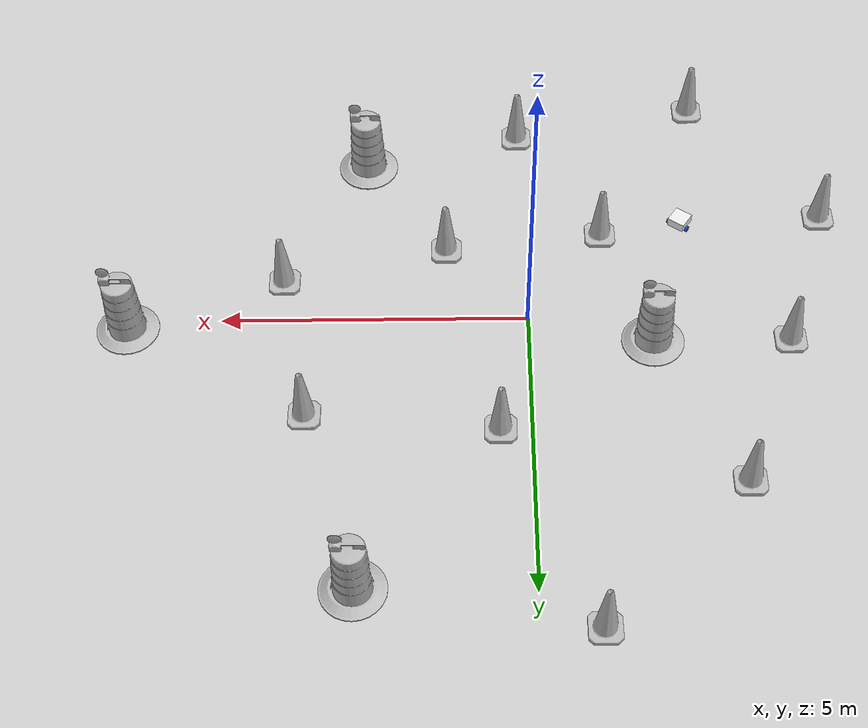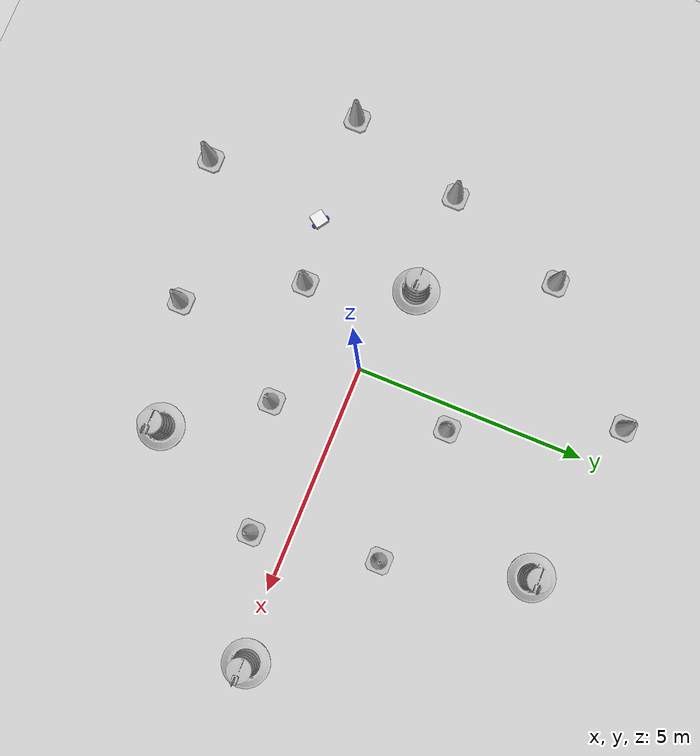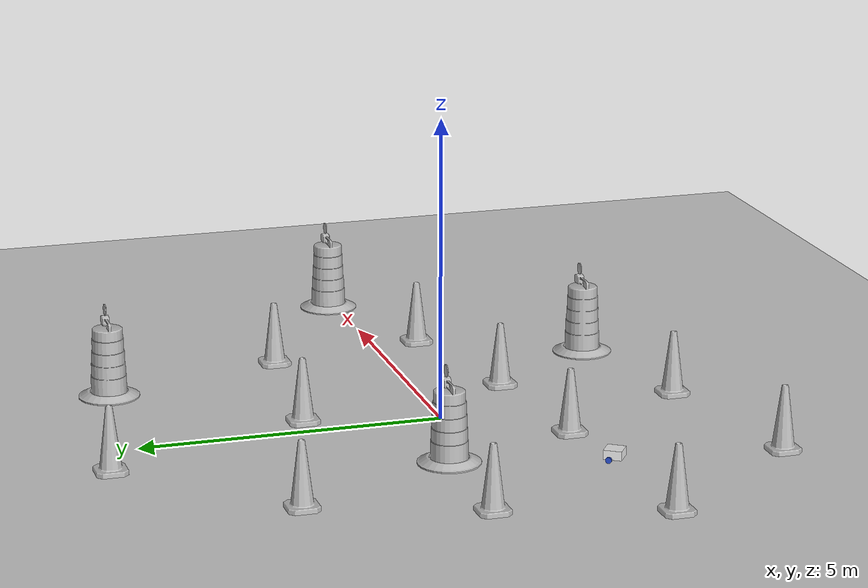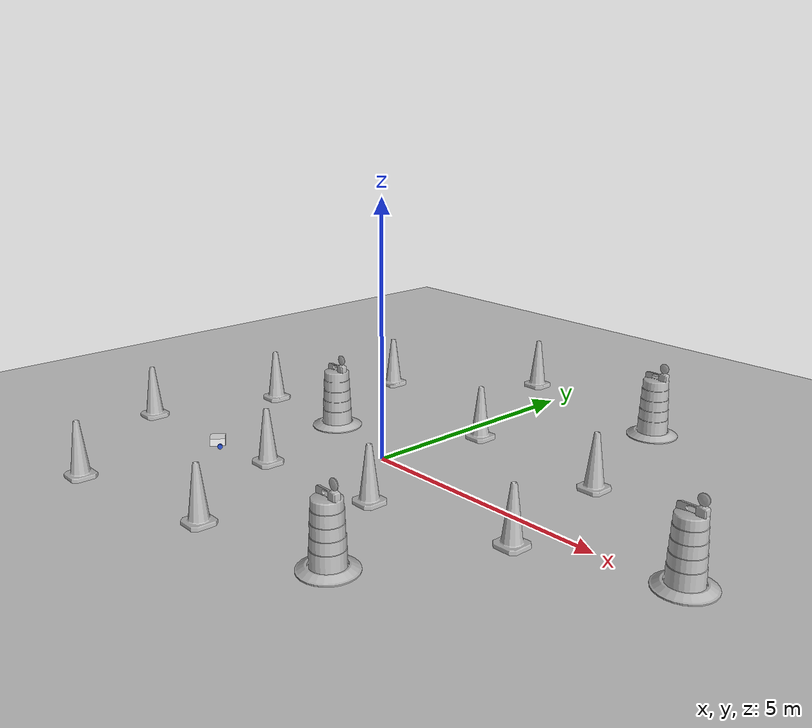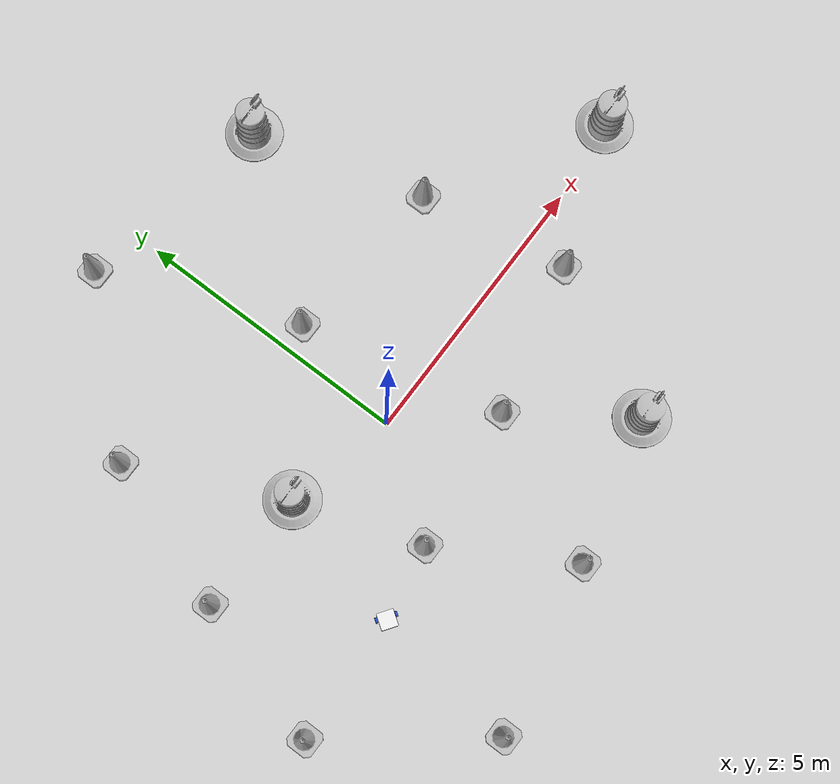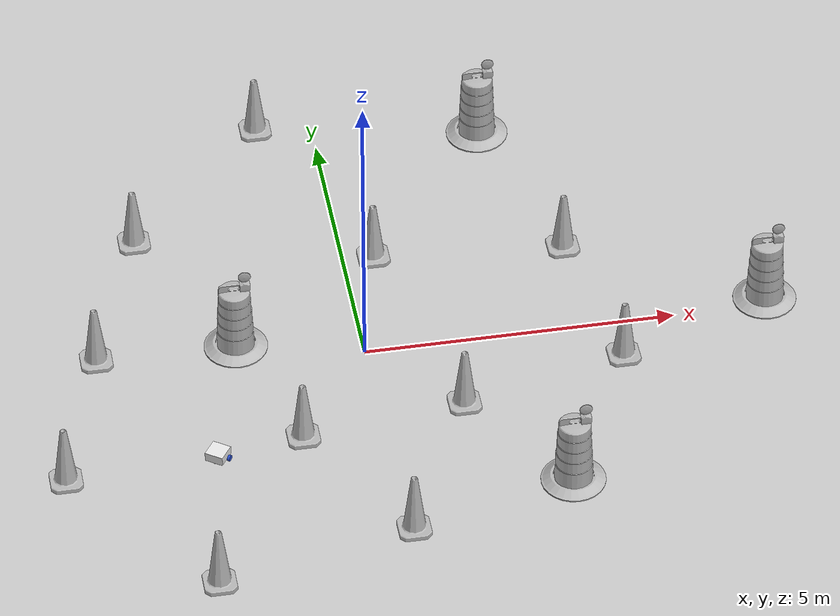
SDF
<sdf version="1.7">
 <world name="default">
  <light name="sun" type="directional">
   <pose>0 0 10 0 -0 0</pose>
   <diffuse>0.8 0.8 0.8 1</diffuse>
   <specular>0.2 0.2 0.2 1</specular>
   <attenuation>
    <range>1000</range>
    <constant>0.9</constant>
    <linear>0.01</linear>
    <quadratic>0.001</quadratic>
   </attenuation>
   <direction>-0.5 0.1 -0.9</direction>
   <spot><inner_angle>0</inner_angle><outer_angle>0</outer_angle><falloff>0</falloff></spot>
  </light>
  <model name="ground_plane">
   <static>1</static>
   <link name="link">
    <collision name="collision">
     <geometry><plane><normal>0 0 1</normal><size>100 100</size></plane></geometry>
     <surface><friction><ode><mu>100</mu><mu2>50</mu2></ode></friction></surface>
    </collision>
    <visual name="visual">
     <cast_shadows>0</cast_shadows>
     <geometry><plane><normal>0 0 1</normal><size>100 100</size></plane></geometry>
     <material>
      <script><uri>file://media/materials/scripts/gazebo.material</uri><name>Gazebo/Grey</name></script>
     </material>
    </visual>
   </link>
  </model>
  <gravity>0 0 -9.8</gravity>
  <magnetic_field>6e-06 2.3e-05 -4.2e-05</magnetic_field>
  <atmosphere type="adiabatic"/>
  <physics type="ode">
   <max_step_size>0.001</max_step_size>
   <real_time_factor>1</real_time_factor>
   <real_time_update_rate>1000</real_time_update_rate>
  </physics>
  <scene><ambient>0.4 0.4 0.4 1</ambient><background>0.7 0.7 0.7 1</background><shadows>1</shadows></scene>
  <audio><device>default</device></audio>
  <spherical_coordinates>
   <surface_model>EARTH_WGS84</surface_model>
   <latitude_deg>0</latitude_deg>
   <longitude_deg>0</longitude_deg>
   <elevation>0</elevation>
   <heading_deg>0</heading_deg>
  </spherical_coordinates>
  <model name="my_bot">
   <link name="base_link">
    <inertial>
     <pose>0.065 0 0.0625 0 -0 0</pose>
     <mass>0.6</mass>
     <inertia>
      <ixx>0.0151562</ixx>
      <ixy>0</ixy>
      <ixz>0.0005625</ixz>
      <iyy>0.0158313</iyy>
      <iyz>0</iyz>
      <izz>0.018175</izz>
     </inertia>
    </inertial>
    <collision name="base_link_fixed_joint_lump__chassis_collision">
     <pose>0.05 0 0.075 0 -0 0</pose>
     <geometry><box><size>0.3 0.3 0.15</size></box></geometry>
    </collision>
    <collision name="base_link_fixed_joint_lump__caster_wheel_collision_1">
     <pose>0.14 0 0 0 -0 0</pose>
     <geometry><sphere><radius>0.05</radius></sphere></geometry>
     <surface><friction><ode><mu>0.001</mu><mu2>0.001</mu2></ode></friction></surface>
    </collision>
    <visual name="base_link_fixed_joint_lump__chassis_visual">
     <pose>0.05 0 0.075 0 -0 0</pose>
     <geometry><box><size>0.3 0.3 0.15</size></box></geometry>
     <material>
      <script><name>Gazebo/White</name><uri>file://media/materials/scripts/gazebo.material</uri></script>
     </material>
    </visual>
    <visual name="base_link_fixed_joint_lump__caster_wheel_visual_1">
     <pose>0.14 0 0 0 -0 0</pose>
     <geometry><sphere><radius>0.05</radius></sphere></geometry>
     <material>
      <script><name>Gazebo/Black</name><uri>file://media/materials/scripts/gazebo.material</uri></script>
     </material>
    </visual>
   </link>
   <joint name="left_wheel_joint" type="revolute">
    <pose relative_to="base_link">0 0.175 0 -1.5708 0 0</pose>
    <parent>base_link</parent>
    <child>left_wheel</child>
    <axis>
     <xyz>0 0 1</xyz>
     <limit><lower>-1e+16</lower><upper>1e+16</upper></limit>
     <dynamics><spring_reference>0</spring_reference><spring_stiffness>0</spring_stiffness></dynamics>
    </axis>
   </joint>
   <link name="left_wheel">
    <pose relative_to="left_wheel_joint">0 0 0 0 -0 0</pose>
    <inertial>
     <mass>0.1</mass>
     <inertia>
      <ixx>7.58333e-05</ixx>
      <ixy>0</ixy>
      <ixz>0</ixz>
      <iyy>7.58333e-05</iyy>
      <iyz>0</iyz>
      <izz>0.000125</izz>
     </inertia>
    </inertial>
    <collision name="left_wheel_collision">
     <geometry><cylinder><length>0.04</length><radius>0.05</radius></cylinder></geometry>
    </collision>
    <visual name="left_wheel_visual">
     <geometry><cylinder><length>0.04</length><radius>0.05</radius></cylinder></geometry>
     <material>
      <script><name>Gazebo/Blue</name><uri>file://media/materials/scripts/gazebo.material</uri></script>
     </material>
    </visual>
   </link>
   <joint name="right_wheel_joint" type="revolute">
    <pose relative_to="base_link">0 -0.175 0 1.5708 -0 0</pose>
    <parent>base_link</parent>
    <child>right_wheel</child>
    <axis>
     <xyz>0 0 -1</xyz>
     <limit><lower>-1e+16</lower><upper>1e+16</upper></limit>
     <dynamics><spring_reference>0</spring_reference><spring_stiffness>0</spring_stiffness></dynamics>
    </axis>
   </joint>
   <link name="right_wheel">
    <pose relative_to="right_wheel_joint">0 0 0 0 -0 0</pose>
    <inertial>
     <mass>0.1</mass>
     <inertia>
      <ixx>7.58333e-05</ixx>
      <ixy>0</ixy>
      <ixz>0</ixz>
      <iyy>7.58333e-05</iyy>
      <iyz>0</iyz>
      <izz>0.000125</izz>
     </inertia>
    </inertial>
    <collision name="right_wheel_collision">
     <geometry><cylinder><length>0.04</length><radius>0.05</radius></cylinder></geometry>
    </collision>
    <visual name="right_wheel_visual">
     <geometry><cylinder><length>0.04</length><radius>0.05</radius></cylinder></geometry>
     <material>
      <script><name>Gazebo/Blue</name><uri>file://media/materials/scripts/gazebo.material</uri></script>
     </material>
    </visual>
   </link>
   <plugin name="joint_state_publisher" filename="libgazebo_ros_joint_state_publisher.so">
    <jointName>left_wheel,right_wheel</jointName>
   </plugin>
   <static>0</static>
   <plugin name="diff_drive" filename="libgazebo_ros_diff_drive.so">
    <left_joint>left_wheel_joint</left_joint>
    <right_joint>right_wheel_joint</right_joint>
    <wheel_separation>0.35</wheel_separation>
    <wheel_diameter>0.1</wheel_diameter>
    <max_wheel_torque>200</max_wheel_torque>
    <max_wheel_acceleration>10.0</max_wheel_acceleration>
    <odometry_frame>odom</odometry_frame>
    <robot_base_frame>base_link</robot_base_frame>
    <publish_odom>1</publish_odom>
    <publish_odom_tf>1</publish_odom_tf>
    <publish_wheel_tf>1</publish_wheel_tf>
   </plugin>
   <pose>-2.61545 -1.97792 0.05 0 9e-06 -2.16885</pose>
  </model>
  <model name="Construction Cone">
   <link name="link">
    <collision name="collision">
     <geometry>
      <mesh><scale>10 10 10</scale><uri>model://construction_cone/meshes/construction_cone.dae</uri></mesh>
     </geometry>
    </collision>
    <visual name="visual">
     <geometry>
      <mesh><scale>10 10 10</scale><uri>model://construction_cone/meshes/construction_cone.dae</uri></mesh>
     </geometry>
    </visual>
    <inertial>
     <inertia><ixx>1</ixx><ixy>0</ixy><ixz>0</ixz><iyy>1</iyy><iyz>0</iyz><izz>1</izz></inertia>
     <mass>1</mass>
    </inertial>
   </link>
   <pose>-1.26532 -1.76948 -0 0 -1e-06 0</pose>
  </model>
  <model name="Construction Cone_0">
   <link name="link">
    <collision name="collision">
     <geometry>
      <mesh><scale>10 10 10</scale><uri>model://construction_cone/meshes/construction_cone.dae</uri></mesh>
     </geometry>
    </collision>
    <visual name="visual">
     <geometry>
      <mesh><scale>10 10 10</scale><uri>model://construction_cone/meshes/construction_cone.dae</uri></mesh>
     </geometry>
    </visual>
    <inertial>
     <inertia><ixx>1</ixx><ixy>0</ixy><ixz>0</ixz><iyy>1</iyy><iyz>0</iyz><izz>1</izz></inertia>
     <mass>1</mass>
    </inertial>
   </link>
   <pose>-4.22726 0.492681 -0 0 -0 0</pose>
  </model>
  <model name="Construction Cone_1">
   <link name="link">
    <collision name="collision">
     <geometry>
      <mesh><scale>10 10 10</scale><uri>model://construction_cone/meshes/construction_cone.dae</uri></mesh>
     </geometry>
    </collision>
    <visual name="visual">
     <geometry>
      <mesh><scale>10 10 10</scale><uri>model://construction_cone/meshes/construction_cone.dae</uri></mesh>
     </geometry>
    </visual>
    <inertial>
     <inertia><ixx>1</ixx><ixy>0</ixy><ixz>0</ixz><iyy>1</iyy><iyz>0</iyz><izz>1</izz></inertia>
     <mass>1</mass>
    </inertial>
   </link>
   <pose>0.493371 2.18601 -0 -0 -0 -0</pose>
  </model>
  <model name="Construction Cone_2">
   <link name="link">
    <collision name="collision">
     <geometry>
      <mesh><scale>10 10 10</scale><uri>model://construction_cone/meshes/construction_cone.dae</uri></mesh>
     </geometry>
    </collision>
    <visual name="visual">
     <geometry>
      <mesh><scale>10 10 10</scale><uri>model://construction_cone/meshes/construction_cone.dae</uri></mesh>
     </geometry>
    </visual>
    <inertial>
     <inertia><ixx>1</ixx><ixy>0</ixy><ixz>0</ixz><iyy>1</iyy><iyz>0</iyz><izz>1</izz></inertia>
     <mass>1</mass>
    </inertial>
   </link>
   <pose>1.34015 -1.45 -0 0 -1e-06 0</pose>
  </model>
  <model name="Construction Cone_3">
   <link name="link">
    <collision name="collision">
     <geometry>
      <mesh><scale>10 10 10</scale><uri>model://construction_cone/meshes/construction_cone.dae</uri></mesh>
     </geometry>
    </collision>
    <visual name="visual">
     <geometry>
      <mesh><scale>10 10 10</scale><uri>model://construction_cone/meshes/construction_cone.dae</uri></mesh>
     </geometry>
    </visual>
    <inertial>
     <inertia><ixx>1</ixx><ixy>0</ixy><ixz>0</ixz><iyy>1</iyy><iyz>0</iyz><izz>1</izz></inertia>
     <mass>1</mass>
    </inertial>
   </link>
   <pose>-5.02729 -2.12098 -8e-06 -6e-06 0 0</pose>
  </model>
  <model name="Construction Cone_4">
   <link name="link">
    <collision name="collision">
     <geometry>
      <mesh><scale>10 10 10</scale><uri>model://construction_cone/meshes/construction_cone.dae</uri></mesh>
     </geometry>
    </collision>
    <visual name="visual">
     <geometry>
      <mesh><scale>10 10 10</scale><uri>model://construction_cone/meshes/construction_cone.dae</uri></mesh>
     </geometry>
    </visual>
    <inertial>
     <inertia><ixx>1</ixx><ixy>0</ixy><ixz>0</ixz><iyy>1</iyy><iyz>0</iyz><izz>1</izz></inertia>
     <mass>1</mass>
    </inertial>
   </link>
   <pose>0.095273 -4.06232 -1e-05 -1e-06 0 0</pose>
  </model>
  <model name="Construction Cone_5">
   <link name="link">
    <collision name="collision">
     <geometry>
      <mesh><scale>10 10 10</scale><uri>model://construction_cone/meshes/construction_cone.dae</uri></mesh>
     </geometry>
    </collision>
    <visual name="visual">
     <geometry>
      <mesh><scale>10 10 10</scale><uri>model://construction_cone/meshes/construction_cone.dae</uri></mesh>
     </geometry>
    </visual>
    <inertial>
     <inertia><ixx>1</ixx><ixy>0</ixy><ixz>0</ixz><iyy>1</iyy><iyz>0</iyz><izz>1</izz></inertia>
     <mass>1</mass>
    </inertial>
   </link>
   <pose>-3.00344 -4.70686 -5e-06 -4e-06 1e-06 0</pose>
  </model>
  <model name="Construction Cone_6">
   <link name="link">
    <collision name="collision">
     <geometry>
      <mesh><scale>10 10 10</scale><uri>model://construction_cone/meshes/construction_cone.dae</uri></mesh>
     </geometry>
    </collision>
    <visual name="visual">
     <geometry>
      <mesh><scale>10 10 10</scale><uri>model://construction_cone/meshes/construction_cone.dae</uri></mesh>
     </geometry>
    </visual>
    <inertial>
     <inertia><ixx>1</ixx><ixy>0</ixy><ixz>0</ixz><iyy>1</iyy><iyz>0</iyz><izz>1</izz></inertia>
     <mass>1</mass>
    </inertial>
   </link>
   <pose>3.55346 1.9009 -0 0 -0 0</pose>
  </model>
  <model name="Construction Cone_7">
   <link name="link">
    <collision name="collision">
     <geometry>
      <mesh><scale>10 10 10</scale><uri>model://construction_cone/meshes/construction_cone.dae</uri></mesh>
     </geometry>
    </collision>
    <visual name="visual">
     <geometry>
      <mesh><scale>10 10 10</scale><uri>model://construction_cone/meshes/construction_cone.dae</uri></mesh>
     </geometry>
    </visual>
    <inertial>
     <inertia><ixx>1</ixx><ixy>0</ixy><ixz>0</ixz><iyy>1</iyy><iyz>0</iyz><izz>1</izz></inertia>
     <mass>1</mass>
    </inertial>
   </link>
   <pose>-0.925131 5.6075 -1e-06 1e-06 -2e-06 -0</pose>
  </model>
  <model name="Construction Cone_8">
   <link name="link">
    <collision name="collision">
     <geometry>
      <mesh><scale>10 10 10</scale><uri>model://construction_cone/meshes/construction_cone.dae</uri></mesh>
     </geometry>
    </collision>
    <visual name="visual">
     <geometry>
      <mesh><scale>10 10 10</scale><uri>model://construction_cone/meshes/construction_cone.dae</uri></mesh>
     </geometry>
    </visual>
    <inertial>
     <inertia><ixx>1</ixx><ixy>0</ixy><ixz>0</ixz><iyy>1</iyy><iyz>0</iyz><izz>1</izz></inertia>
     <mass>1</mass>
    </inertial>
   </link>
   <pose>-3.27026 3.16899 -0 0 -0 0</pose>
  </model>
  <model name="Construction Cone_9">
   <link name="link">
    <collision name="collision">
     <geometry>
      <mesh><scale>10 10 10</scale><uri>model://construction_cone/meshes/construction_cone.dae</uri></mesh>
     </geometry>
    </collision>
    <visual name="visual">
     <geometry>
      <mesh><scale>10 10 10</scale><uri>model://construction_cone/meshes/construction_cone.dae</uri></mesh>
     </geometry>
    </visual>
    <inertial>
     <inertia><ixx>1</ixx><ixy>0</ixy><ixz>0</ixz><iyy>1</iyy><iyz>0</iyz><izz>1</izz></inertia>
     <mass>1</mass>
    </inertial>
   </link>
   <pose>4.0205 -0.784163 -0 0 -1e-06 0</pose>
  </model>
  <model name="Construction Barrel">
   <link name="link">
    <inertial>
     <pose>0 0 0.4 0 -0 0</pose>
     <mass>500</mass>
     <inertia><ixx>51.2096</ixx><iyy>51.2096</iyy><izz>25</izz><ixy>0</ixy><ixz>0</ixz><iyz>0</iyz></inertia>
    </inertial>
    <collision name="collision">
     <geometry><mesh><uri>model://construction_barrel/meshes/construction_barrel.dae</uri></mesh></geometry>
    </collision>
    <visual name="visual">
     <geometry><mesh><uri>model://construction_barrel/meshes/construction_barrel.dae</uri></mesh></geometry>
    </visual>
   </link>
   <pose>-2.00003 0.481136 -1e-06 3e-06 1e-05 -7e-06</pose>
  </model>
  <model name="Construction Barrel_0">
   <link name="link">
    <inertial>
     <pose>0 0 0.4 0 -0 0</pose>
     <mass>500</mass>
     <inertia><ixx>51.2096</ixx><iyy>51.2096</iyy><izz>25</izz><ixy>0</ixy><ixz>0</ixz><iyz>0</iyz></inertia>
    </inertial>
    <collision name="collision">
     <geometry><mesh><uri>model://construction_barrel/meshes/construction_barrel.dae</uri></mesh></geometry>
    </collision>
    <visual name="visual">
     <geometry><mesh><uri>model://construction_barrel/meshes/construction_barrel.dae</uri></mesh></geometry>
    </visual>
   </link>
   <pose>2.70217 -3.39815 1e-06 2e-06 3e-06 -6e-06</pose>
  </model>
  <model name="Construction Barrel_1">
   <link name="link">
    <inertial>
     <pose>0 0 0.4 0 -0 0</pose>
     <mass>500</mass>
     <inertia><ixx>51.2096</ixx><iyy>51.2096</iyy><izz>25</izz><ixy>0</ixy><ixz>0</ixz><iyz>0</iyz></inertia>
    </inertial>
    <collision name="collision">
     <geometry><mesh><uri>model://construction_barrel/meshes/construction_barrel.dae</uri></mesh></geometry>
    </collision>
    <visual name="visual">
     <geometry><mesh><uri>model://construction_barrel/meshes/construction_barrel.dae</uri></mesh></geometry>
    </visual>
   </link>
   <pose>2.68709 4.94501 0 0 0 -3e-06</pose>
  </model>
  <model name="Construction Barrel_2">
   <link name="link">
    <inertial>
     <pose>0 0 0.4 0 -0 0</pose>
     <mass>500</mass>
     <inertia><ixx>51.2096</ixx><iyy>51.2096</iyy><izz>25</izz><ixy>0</ixy><ixz>0</ixz><iyz>0</iyz></inertia>
    </inertial>
    <collision name="collision">
     <geometry><mesh><uri>model://construction_barrel/meshes/construction_barrel.dae</uri></mesh></geometry>
    </collision>
    <visual name="visual">
     <geometry><mesh><uri>model://construction_barrel/meshes/construction_barrel.dae</uri></mesh></geometry>
    </visual>
   </link>
   <pose>6.50769 0.157495 -1e-06 3e-06 -2e-06 -2e-06</pose>
  </model>
 </world>
</sdf>
